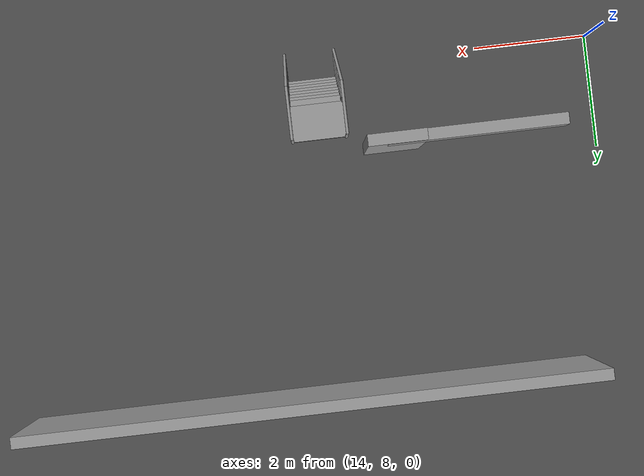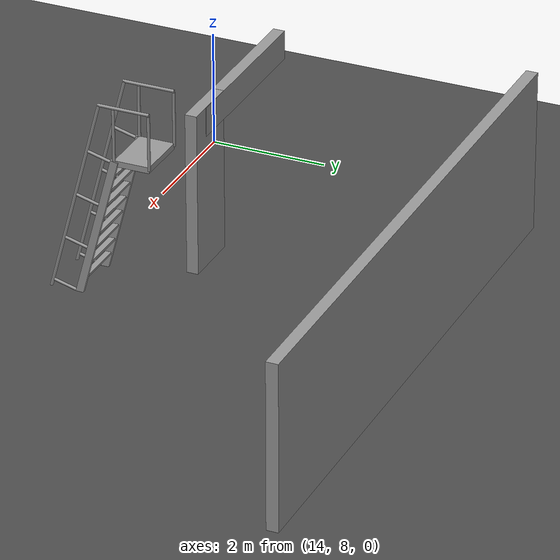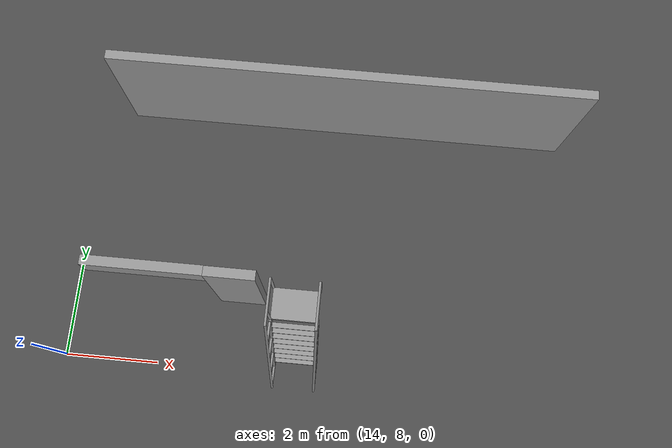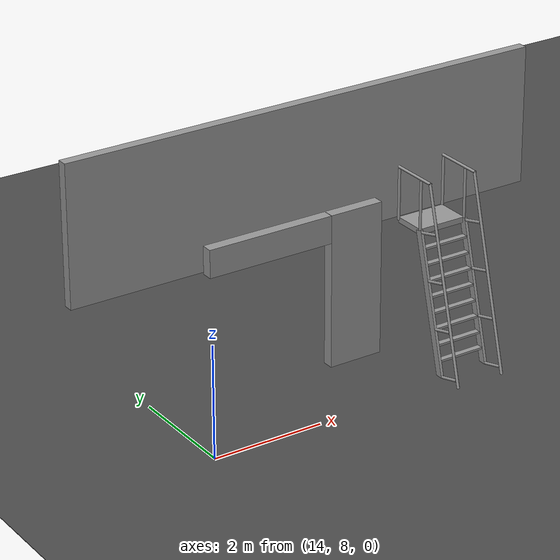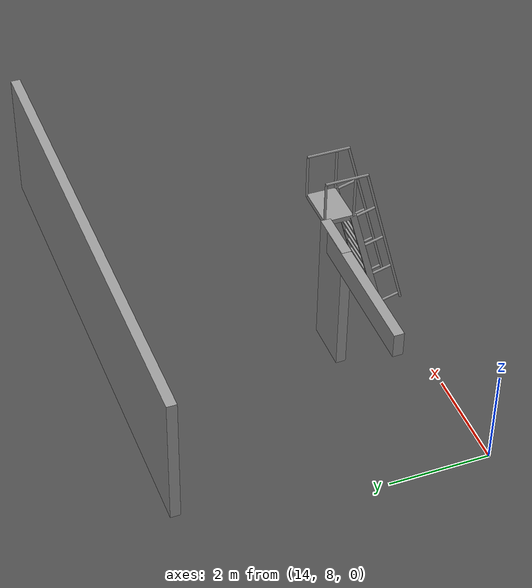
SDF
<sdf version="1.6">
 <world name="default">
  <model name="grey_wall_8">
   <static>1</static>
   <link name="link">
    <pose>0 0 1.4 0 -0 0</pose>
    <collision name="collision"><geometry><box><size>10 0.2 2.8</size></box></geometry></collision>
    <visual name="visual">
     <cast_shadows>0</cast_shadows>
     <geometry><box><size>10 0.2 2.8</size></box></geometry>
     <material>
      <script>
       <uri>model://grey_wall/materials/scripts</uri>
       <uri>model://grey_wall/materials/textures</uri>
       <name>vrc/grey_wall</name>
      </script>
     </material>
    </visual>
   </link>
   <pose>19.6341 13.861 0 0 -0 0</pose>
  </model>
  <model name="asphalt_plane">
   <static>1</static>
   <link name="link">
    <collision name="collision"><geometry><box><size>40 40 0.01</size></box></geometry></collision>
    <visual name="visual">
     <cast_shadows>0</cast_shadows>
     <geometry><box><size>40 40 0.01</size></box></geometry>
     <material>
      <script>
       <uri>model://asphalt_plane/materials/scripts</uri>
       <uri>model://asphalt_plane/materials/textures</uri>
       <name>vrc/asphalt</name>
      </script>
     </material>
    </visual>
   </link>
   <pose>30.3856 -0.465765 0 0 -0 1.57</pose>
  </model>
  <model name="ladder_75deg_2rails">
   <static>1</static>
   <link name="step0">
    <pose>0 0.071453 0.266667 0 -0 0</pose>
    <inertial>
     <mass>9.75482</mass>
     <inertia>
      <ixx>0.00957124</ixx>
      <iyy>0.65963</iyy>
      <izz>0.666842</izz>
      <ixy>0</ixy>
      <ixz>0</ixz>
      <iyz>0</iyz>
     </inertia>
    </inertial>
    <collision name="collision"><geometry><box><size>0.9 0.1016 0.0381</size></box></geometry></collision>
    <visual name="visual">
     <geometry><box><size>0.9 0.1016 0.0381</size></box></geometry>
     <material>
      <script><uri>file://media/materials/scripts/gazebo.material</uri><name>Gazebo/Grey</name></script>
     </material>
    </visual>
   </link>
   <link name="step1">
    <pose>0 0.142906 0.533333 0 -0 0</pose>
    <inertial>
     <mass>9.75482</mass>
     <inertia>
      <ixx>0.00957124</ixx>
      <iyy>0.65963</iyy>
      <izz>0.666842</izz>
      <ixy>0</ixy>
      <ixz>0</ixz>
      <iyz>0</iyz>
     </inertia>
    </inertial>
    <collision name="collision"><geometry><box><size>0.9 0.1016 0.0381</size></box></geometry></collision>
    <visual name="visual">
     <geometry><box><size>0.9 0.1016 0.0381</size></box></geometry>
     <material>
      <script><uri>file://media/materials/scripts/gazebo.material</uri><name>Gazebo/Grey</name></script>
     </material>
    </visual>
   </link>
   <link name="step2">
    <pose>0 0.214359 0.8 0 -0 0</pose>
    <inertial>
     <mass>9.75482</mass>
     <inertia>
      <ixx>0.00957124</ixx>
      <iyy>0.65963</iyy>
      <izz>0.666842</izz>
      <ixy>0</ixy>
      <ixz>0</ixz>
      <iyz>0</iyz>
     </inertia>
    </inertial>
    <collision name="collision"><geometry><box><size>0.9 0.1016 0.0381</size></box></geometry></collision>
    <visual name="visual">
     <geometry><box><size>0.9 0.1016 0.0381</size></box></geometry>
     <material>
      <script><uri>file://media/materials/scripts/gazebo.material</uri><name>Gazebo/Grey</name></script>
     </material>
    </visual>
   </link>
   <link name="step3">
    <pose>0 0.285812 1.06667 0 -0 0</pose>
    <inertial>
     <mass>9.75482</mass>
     <inertia>
      <ixx>0.00957124</ixx>
      <iyy>0.65963</iyy>
      <izz>0.666842</izz>
      <ixy>0</ixy>
      <ixz>0</ixz>
      <iyz>0</iyz>
     </inertia>
    </inertial>
    <collision name="collision"><geometry><box><size>0.9 0.1016 0.0381</size></box></geometry></collision>
    <visual name="visual">
     <geometry><box><size>0.9 0.1016 0.0381</size></box></geometry>
     <material>
      <script><uri>file://media/materials/scripts/gazebo.material</uri><name>Gazebo/Grey</name></script>
     </material>
    </visual>
   </link>
   <link name="step4">
    <pose>0 0.357266 1.33333 0 -0 0</pose>
    <inertial>
     <mass>9.75482</mass>
     <inertia>
      <ixx>0.00957124</ixx>
      <iyy>0.65963</iyy>
      <izz>0.666842</izz>
      <ixy>0</ixy>
      <ixz>0</ixz>
      <iyz>0</iyz>
     </inertia>
    </inertial>
    <collision name="collision"><geometry><box><size>0.9 0.1016 0.0381</size></box></geometry></collision>
    <visual name="visual">
     <geometry><box><size>0.9 0.1016 0.0381</size></box></geometry>
     <material>
      <script><uri>file://media/materials/scripts/gazebo.material</uri><name>Gazebo/Grey</name></script>
     </material>
    </visual>
   </link>
   <link name="step5">
    <pose>0 0.428719 1.6 0 -0 0</pose>
    <inertial>
     <mass>9.75482</mass>
     <inertia>
      <ixx>0.00957124</ixx>
      <iyy>0.65963</iyy>
      <izz>0.666842</izz>
      <ixy>0</ixy>
      <ixz>0</ixz>
      <iyz>0</iyz>
     </inertia>
    </inertial>
    <collision name="collision"><geometry><box><size>0.9 0.1016 0.0381</size></box></geometry></collision>
    <visual name="visual">
     <geometry><box><size>0.9 0.1016 0.0381</size></box></geometry>
     <material>
      <script><uri>file://media/materials/scripts/gazebo.material</uri><name>Gazebo/Grey</name></script>
     </material>
    </visual>
   </link>
   <link name="step6">
    <pose>0 0.500172 1.86667 0 -0 0</pose>
    <inertial>
     <mass>9.75482</mass>
     <inertia>
      <ixx>0.00957124</ixx>
      <iyy>0.65963</iyy>
      <izz>0.666842</izz>
      <ixy>0</ixy>
      <ixz>0</ixz>
      <iyz>0</iyz>
     </inertia>
    </inertial>
    <collision name="collision"><geometry><box><size>0.9 0.1016 0.0381</size></box></geometry></collision>
    <visual name="visual">
     <geometry><box><size>0.9 0.1016 0.0381</size></box></geometry>
     <material>
      <script><uri>file://media/materials/scripts/gazebo.material</uri><name>Gazebo/Grey</name></script>
     </material>
    </visual>
   </link>
   <link name="step7">
    <pose>0 0.571625 2.13333 0 -0 0</pose>
    <inertial>
     <mass>9.75482</mass>
     <inertia>
      <ixx>0.00957124</ixx>
      <iyy>0.65963</iyy>
      <izz>0.666842</izz>
      <ixy>0</ixy>
      <ixz>0</ixz>
      <iyz>0</iyz>
     </inertia>
    </inertial>
    <collision name="collision"><geometry><box><size>0.9 0.1016 0.0381</size></box></geometry></collision>
    <visual name="visual">
     <geometry><box><size>0.9 0.1016 0.0381</size></box></geometry>
     <material>
      <script><uri>file://media/materials/scripts/gazebo.material</uri><name>Gazebo/Grey</name></script>
     </material>
    </visual>
   </link>
   <link name="landing">
    <pose>0 0.943078 2.4 0 -0 0</pose>
    <inertial>
     <mass>57.6072</mass>
     <inertia><ixx>1.73518</ixx><iyy>3.89545</iyy><izz>5.6167</izz><ixy>0</ixy><ixz>0</ixz><iyz>0</iyz></inertia>
    </inertial>
    <collision name="collision"><geometry><box><size>0.9 0.6 0.1016</size></box></geometry></collision>
    <visual name="visual">
     <geometry><box><size>0.9 0.6 0.1016</size></box></geometry>
     <material>
      <script><uri>file://media/materials/scripts/gazebo.material</uri><name>Gazebo/Grey</name></script>
     </material>
    </visual>
   </link>
   <link name="left_side_wall">
    <pose>-0.45 0.321539 1.2 1.309 -0 0</pose>
    <collision name="collision"><geometry><box><size>0.0508 2.56466 0.13</size></box></geometry></collision>
    <visual name="visual">
     <geometry><box><size>0.0508 2.56466 0.13</size></box></geometry>
     <material>
      <script><uri>file://media/materials/scripts/gazebo.material</uri><name>Gazebo/Grey</name></script>
     </material>
    </visual>
   </link>
   <link name="right_side_wall">
    <pose>0.45 0.321539 1.2 1.309 -0 0</pose>
    <collision name="collision"><geometry><box><size>0.0508 2.56466 0.13</size></box></geometry></collision>
    <visual name="visual">
     <geometry><box><size>0.0508 2.56466 0.13</size></box></geometry>
     <material>
      <script><uri>file://media/materials/scripts/gazebo.material</uri><name>Gazebo/Grey</name></script>
     </material>
    </visual>
   </link>
   <link name="left_railing_long">
    <pose>-0.45 -0.053461 1.66651 -0.261799 0 0</pose>
    <collision name="collision">
     <geometry><cylinder><radius>0.02413</radius><length>3.51529</length></cylinder></geometry>
    </collision>
    <visual name="visual">
     <geometry><cylinder><radius>0.02413</radius><length>3.51529</length></cylinder></geometry>
     <material>
      <script><uri>file://media/materials/scripts/gazebo.material</uri><name>Gazebo/Grey</name></script>
     </material>
    </visual>
   </link>
   <link name="left_railing_upright0">
    <pose>-0.45 -0.210089 0.056293 1.309 -0 0</pose>
    <collision name="collision">
     <geometry><cylinder><radius>0.02413</radius><length>0.482963</length></cylinder></geometry>
    </collision>
    <visual name="visual">
     <geometry><cylinder><radius>0.02413</radius><length>0.482963</length></cylinder></geometry>
     <material>
      <script><uri>file://media/materials/scripts/gazebo.material</uri><name>Gazebo/Grey</name></script>
     </material>
    </visual>
   </link>
   <link name="left_railing_upright1">
    <pose>-0.45 0.00427 0.856293 1.309 -0 0</pose>
    <collision name="collision">
     <geometry><cylinder><radius>0.02413</radius><length>0.482963</length></cylinder></geometry>
    </collision>
    <visual name="visual">
     <geometry><cylinder><radius>0.02413</radius><length>0.482963</length></cylinder></geometry>
     <material>
      <script><uri>file://media/materials/scripts/gazebo.material</uri><name>Gazebo/Grey</name></script>
     </material>
    </visual>
   </link>
   <link name="left_railing_upright2">
    <pose>-0.45 0.21863 1.65629 1.309 -0 0</pose>
    <collision name="collision">
     <geometry><cylinder><radius>0.02413</radius><length>0.482963</length></cylinder></geometry>
    </collision>
    <visual name="visual">
     <geometry><cylinder><radius>0.02413</radius><length>0.482963</length></cylinder></geometry>
     <material>
      <script><uri>file://media/materials/scripts/gazebo.material</uri><name>Gazebo/Grey</name></script>
     </material>
    </visual>
   </link>
   <link name="left_railing_upright3">
    <pose>-0.45 0.432989 2.45629 1.309 -0 0</pose>
    <collision name="collision">
     <geometry><cylinder><radius>0.02413</radius><length>0.482963</length></cylinder></geometry>
    </collision>
    <visual name="visual">
     <geometry><cylinder><radius>0.02413</radius><length>0.482963</length></cylinder></geometry>
     <material>
      <script><uri>file://media/materials/scripts/gazebo.material</uri><name>Gazebo/Grey</name></script>
     </material>
    </visual>
   </link>
   <link name="left_railing_landing_top">
    <pose>-0.45 0.818078 3.35714 1.5708 -0 0</pose>
    <collision name="collision">
     <geometry><cylinder><radius>0.02413</radius><length>0.87413</length></cylinder></geometry>
    </collision>
    <visual name="visual">
     <geometry><cylinder><radius>0.02413</radius><length>0.87413</length></cylinder></geometry>
     <material>
      <script><uri>file://media/materials/scripts/gazebo.material</uri><name>Gazebo/Grey</name></script>
     </material>
    </visual>
   </link>
   <link name="left_railing_landing_upright_0">
    <pose>-0.45 0.643078 2.86651 0 -0 0</pose>
    <collision name="collision">
     <geometry><cylinder><radius>0.02413</radius><length>0.933013</length></cylinder></geometry>
    </collision>
    <visual name="visual">
     <geometry><cylinder><radius>0.02413</radius><length>0.933013</length></cylinder></geometry>
     <material>
      <script><uri>file://media/materials/scripts/gazebo.material</uri><name>Gazebo/Grey</name></script>
     </material>
    </visual>
   </link>
   <link name="left_railing_landing_upright_1">
    <pose>-0.45 1.24308 2.86651 0 -0 0</pose>
    <collision name="collision">
     <geometry><cylinder><radius>0.02413</radius><length>0.933013</length></cylinder></geometry>
    </collision>
    <visual name="visual">
     <geometry><cylinder><radius>0.02413</radius><length>0.933013</length></cylinder></geometry>
     <material>
      <script><uri>file://media/materials/scripts/gazebo.material</uri><name>Gazebo/Grey</name></script>
     </material>
    </visual>
   </link>
   <link name="right_railing_long">
    <pose>0.45 -0.053461 1.66651 -0.261799 0 0</pose>
    <collision name="collision">
     <geometry><cylinder><radius>0.02413</radius><length>3.51529</length></cylinder></geometry>
    </collision>
    <visual name="visual">
     <geometry><cylinder><radius>0.02413</radius><length>3.51529</length></cylinder></geometry>
     <material>
      <script><uri>file://media/materials/scripts/gazebo.material</uri><name>Gazebo/Grey</name></script>
     </material>
    </visual>
   </link>
   <link name="right_railing_upright0">
    <pose>0.45 -0.210089 0.056293 1.309 -0 0</pose>
    <collision name="collision">
     <geometry><cylinder><radius>0.02413</radius><length>0.482963</length></cylinder></geometry>
    </collision>
    <visual name="visual">
     <geometry><cylinder><radius>0.02413</radius><length>0.482963</length></cylinder></geometry>
     <material>
      <script><uri>file://media/materials/scripts/gazebo.material</uri><name>Gazebo/Grey</name></script>
     </material>
    </visual>
   </link>
   <link name="right_railing_upright1">
    <pose>0.45 0.00427 0.856293 1.309 -0 0</pose>
    <collision name="collision">
     <geometry><cylinder><radius>0.02413</radius><length>0.482963</length></cylinder></geometry>
    </collision>
    <visual name="visual">
     <geometry><cylinder><radius>0.02413</radius><length>0.482963</length></cylinder></geometry>
     <material>
      <script><uri>file://media/materials/scripts/gazebo.material</uri><name>Gazebo/Grey</name></script>
     </material>
    </visual>
   </link>
   <link name="right_railing_upright2">
    <pose>0.45 0.21863 1.65629 1.309 -0 0</pose>
    <collision name="collision">
     <geometry><cylinder><radius>0.02413</radius><length>0.482963</length></cylinder></geometry>
    </collision>
    <visual name="visual">
     <geometry><cylinder><radius>0.02413</radius><length>0.482963</length></cylinder></geometry>
     <material>
      <script><uri>file://media/materials/scripts/gazebo.material</uri><name>Gazebo/Grey</name></script>
     </material>
    </visual>
   </link>
   <link name="right_railing_upright3">
    <pose>0.45 0.432989 2.45629 1.309 -0 0</pose>
    <collision name="collision">
     <geometry><cylinder><radius>0.02413</radius><length>0.482963</length></cylinder></geometry>
    </collision>
    <visual name="visual">
     <geometry><cylinder><radius>0.02413</radius><length>0.482963</length></cylinder></geometry>
     <material>
      <script><uri>file://media/materials/scripts/gazebo.material</uri><name>Gazebo/Grey</name></script>
     </material>
    </visual>
   </link>
   <link name="right_railing_landing_top">
    <pose>0.45 0.818078 3.35714 1.5708 -0 0</pose>
    <collision name="collision">
     <geometry><cylinder><radius>0.02413</radius><length>0.87413</length></cylinder></geometry>
    </collision>
    <visual name="visual">
     <geometry><cylinder><radius>0.02413</radius><length>0.87413</length></cylinder></geometry>
     <material>
      <script><uri>file://media/materials/scripts/gazebo.material</uri><name>Gazebo/Grey</name></script>
     </material>
    </visual>
   </link>
   <link name="right_railing_landing_upright_0">
    <pose>0.45 0.643078 2.86651 0 -0 0</pose>
    <collision name="collision">
     <geometry><cylinder><radius>0.02413</radius><length>0.933013</length></cylinder></geometry>
    </collision>
    <visual name="visual">
     <geometry><cylinder><radius>0.02413</radius><length>0.933013</length></cylinder></geometry>
     <material>
      <script><uri>file://media/materials/scripts/gazebo.material</uri><name>Gazebo/Grey</name></script>
     </material>
    </visual>
   </link>
   <link name="right_railing_landing_upright_1">
    <pose>0.45 1.24308 2.86651 0 -0 0</pose>
    <collision name="collision">
     <geometry><cylinder><radius>0.02413</radius><length>0.933013</length></cylinder></geometry>
    </collision>
    <visual name="visual">
     <geometry><cylinder><radius>0.02413</radius><length>0.933013</length></cylinder></geometry>
     <material>
      <script><uri>file://media/materials/scripts/gazebo.material</uri><name>Gazebo/Grey</name></script>
     </material>
    </visual>
   </link>
   <pose>19.004 8.21243 0 0 -0 0</pose>
  </model>
  <model name="grey_wall_0">
   <static>1</static>
   <link name="link">
    <pose>0 0 1.4 0 -0 0</pose>
    <collision name="collision"><geometry><box><size>1 0.2 2.8</size></box></geometry></collision>
    <visual name="visual">
     <cast_shadows>0</cast_shadows>
     <geometry><box><size>1 0.2 2.8</size></box></geometry>
     <material>
      <script>
       <uri>model://grey_wall/materials/scripts</uri>
       <uri>model://grey_wall/materials/textures</uri>
       <name>vrc/grey_wall</name>
      </script>
     </material>
    </visual>
   </link>
   <pose>17.7247 9.58334 0 0 -0 0</pose>
  </model>
  <model name="grey_wall_2">
   <static>1</static>
   <link name="link">
    <pose>0 0 1.4 0 -0 0</pose>
    <collision name="collision"><geometry><box><size>3 0.2 0.5</size></box></geometry></collision>
    <visual name="visual">
     <cast_shadows>0</cast_shadows>
     <geometry><box><size>3 0.2 0.5</size></box></geometry>
     <material>
      <script>
       <uri>model://grey_wall/materials/scripts</uri>
       <uri>model://grey_wall/materials/textures</uri>
       <name>vrc/grey_wall</name>
      </script>
     </material>
    </visual>
   </link>
   <pose>16.3864 9.58927 1.14564 0 -0 0</pose>
  </model>
 </world>
</sdf>
